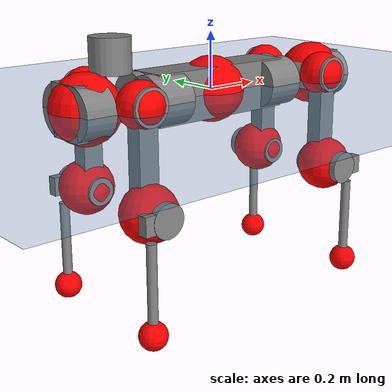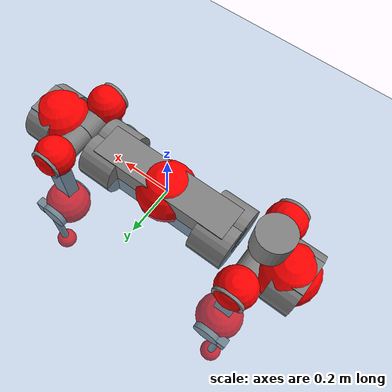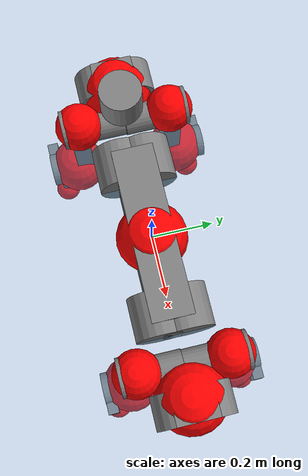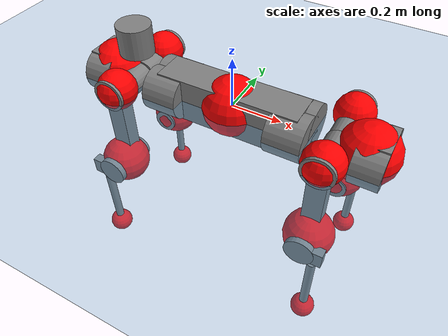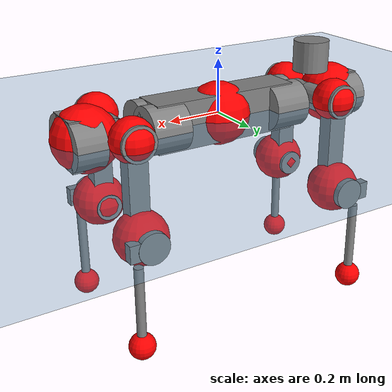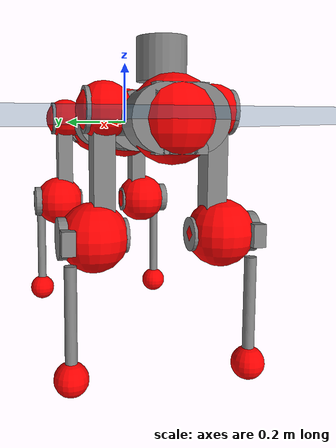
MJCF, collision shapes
<mujoco model="anymal_c">
  <compiler angle="radian" assetdir="assets" balanceinertia="true" inertiafromgeom="false"/>

  <option timestep="0.005" density="1.2" viscosity="2e-05"/>

  <size nkey="1"/>

  <visual>
    <quality shadowsize="8192"/>
    <map shadowclip="0.5"/>
  </visual>

  <default>
    <default class="/">
      <material specular="0" shininess="0.25"/>
      <geom contype="0" conaffinity="0" group="1" solref="-1000 -80"/>
      <site size="0.01 0.005 0.005" group="5"/>
      <general forcelimited="true" forcerange="-80 80" biastype="affine" gainprm="80" biasprm="0 -80 -2"/>
      <default class="anymal_c">
        <joint armature="0.01" damping="0.01" frictionloss="0.1"/>
        <default class="visual">
          <geom type="mesh" group="2"/>
          <default class="visual_zflip"/>
        </default>
        <default class="collision">
          <geom type="cylinder" group="3"/>
          <default class="foot">
            <geom size="0.03 0 0" type="sphere" condim="6" priority="1" friction="0.8 0.02 0.01" solimp="0.015 1 0.03"/>
          </default>
        </default>
      </default>
      <default class="reward_collision_sphere">
        <geom group="5" rgba="1 0 0 1"/>
      </default>
    </default>
  </default>

  <asset>
    <texture type="skybox" colorspace="auto" name="//unnamed_texture_0" builtin="gradient" rgb1="0.95 0.95 0.95" rgb2="0.95 0.95 0.95" width="100" height="600"/>
    <texture type="2d" colorspace="auto" name="texplane" builtin="checker" rgb1="0.345 0.575 0.748" rgb2="0.345 0.575 0.748" markrgb="1 1 1" width="512" height="512"/>
    <texture type="2d" colorspace="linear" name="base" file="base.png"/>
    <texture type="2d" colorspace="linear" name="top_shell" file="top_shell.png"/>
    <texture type="2d" colorspace="linear" name="bottom_shell" file="bottom_shell.png"/>
    <texture type="2d" colorspace="linear" name="remote" file="remote.png"/>
    <texture type="2d" colorspace="linear" name="hatch" file="hatch.png"/>
    <texture type="2d" colorspace="linear" name="handle" file="handle.png"/>
    <texture type="2d" colorspace="linear" name="face" file="face.png"/>
    <texture type="2d" colorspace="linear" name="battery" file="battery.png"/>
    <texture type="2d" colorspace="linear" name="lidar_cage" file="lidar_cage.png"/>
    <texture type="2d" colorspace="linear" name="depth_camera" file="depth_camera.png"/>
    <texture type="2d" colorspace="linear" name="wide_angle_camera" file="wide_angle_camera.png"/>
    <texture type="2d" colorspace="linear" name="lidar" file="lidar.png"/>
    <texture type="2d" colorspace="linear" name="drive" file="drive.png"/>
    <texture type="2d" colorspace="linear" name="hip_l" file="hip_l.png"/>
    <texture type="2d" colorspace="linear" name="shank_l" file="shank_l.png"/>
    <texture type="2d" colorspace="linear" name="foot" file="foot.png"/>
    <texture type="2d" colorspace="linear" name="thigh" file="thigh.png"/>
    <texture type="2d" colorspace="linear" name="shank_r" file="shank_r.png"/>
    <texture type="2d" colorspace="linear" name="hip_r" file="hip_r.png"/>
    <material name="MatPlane" class="/" texture="texplane" texuniform="true" texrepeat="2 2" specular="0.9" shininess="0.5"/>
    <material name="black_plastic" class="/" rgba="0.007 0.007 0.007 1"/>
    <material name="green" class="/" rgba="0.052 0.178 0.033 1"/>
    <material name="red" class="/" rgba="0.178 0.006 0.005 1"/>
    <material name="yellow" class="/" rgba="0.178 0.119 0.006 1"/>
    <material name="lwl" class="/" rgba="0.8 0.8 0.8 1"/>
    <material name="base" class="/" texture="base"/>
    <material name="top_shell" class="/" texture="top_shell"/>
    <material name="bottom_shell" class="/" texture="bottom_shell"/>
    <material name="hip_l" class="/" texture="hip_l"/>
    <material name="thigh" class="/" texture="thigh"/>
    <material name="shank_l" class="/" texture="shank_l"/>
    <material name="foot" class="/" texture="foot"/>
    <material name="hip_r" class="/" texture="hip_r"/>
    <material name="shank" class="/" texture="shank_r"/>
    <material name="hatch" class="/" texture="hatch"/>
    <material name="remote" class="/" texture="remote"/>
    <material name="handle" class="/" texture="handle"/>
    <material name="face" class="/" texture="face"/>
    <material name="depth_camera" class="/" texture="depth_camera"/>
    <material name="wide_angle_camera" class="/" texture="wide_angle_camera"/>
    <material name="battery" class="/" texture="battery"/>
    <material name="lidar_cage" class="/" texture="lidar_cage"/>
    <material name="lidar" class="/" texture="lidar"/>
    <material name="drive" class="/" texture="drive"/>
    <mesh name="base_0" class="/" file="base_0.obj"/>
    <mesh name="base_1" class="/" file="base_1.obj"/>
    <mesh name="base_2" class="/" file="base_2.obj"/>
    <mesh name="base_3" class="/" file="base_3.obj"/>
    <mesh name="base_4" class="/" file="base_4.obj"/>
    <mesh name="base_5" class="/" file="base_5.obj"/>
    <mesh name="top_shell" class="/" file="top_shell.obj"/>
    <mesh name="bottom_shell" class="/" file="bottom_shell.obj"/>
    <mesh name="remote" class="/" file="remote.obj"/>
    <mesh name="handle" class="/" file="handle.obj"/>
    <mesh name="face" class="/" file="face.obj"/>
    <mesh name="wide_angle_camera" class="/" file="wide_angle_camera.obj"/>
    <mesh name="depth_camera" class="/" file="depth_camera.obj"/>
    <mesh name="battery" class="/" file="battery.obj"/>
    <mesh name="lidar_cage" class="/" file="lidar_cage.obj"/>
    <mesh name="lidar" class="/" file="lidar.obj"/>
    <mesh name="drive" class="/" file="drive.obj"/>
    <mesh name="hip_l" class="/" file="hip_l.obj"/>
    <mesh name="thigh" class="/" file="thigh.obj"/>
    <mesh name="shank_l" class="/" file="shank_l.obj"/>
    <mesh name="foot" class="/" file="foot.obj"/>
    <mesh name="hip_r" class="/" file="hip_r.obj"/>
    <mesh name="hatch" class="/" file="hatch.obj"/>
    <mesh name="shank_r" class="/" file="shank_r.obj"/>
  </asset>

  <worldbody>
    <geom name="floor" class="/" size="100 100 0.125" type="plane" group="0" material="MatPlane"/>
    <light name="toplight_shadow" class="/" pos="0 0 5" dir="0.0990148 0.0990148 -0.990148" type="directional" ambient="0.04 0.04 0.04" diffuse="0.55 0.55 0.55" specular="0.12 0.12 0.12"/>
    <light name="toplight_fill" class="/" pos="0 0 5" dir="0.0990148 0.0990148 -0.990148" type="directional" castshadow="false" ambient="0.04 0.04 0.04" diffuse="0.3 0.3 0.3" specular="0.08 0.08 0.08"/>
    <body name="trunk" childclass="anymal_c" pos="0.00121595 0.000245873 -6.29535e-05" quat="1 0.00030599 -0.000431739 0.000585806">
      <inertial pos="0.00364281 0.00211854 0.0615021" quat="0.495845 0.502061 0.493745 0.508221" mass="18.1539" diaginertia="1.32029 0.0354896 0.512997"/>
      <joint name="//unnamed_joint_0" type="free" armature="0" damping="0" frictionloss="0"/>
      <geom name="//unnamed_geom_1" class="visual" material="green" mesh="base_0"/>
      <geom name="//unnamed_geom_2" class="visual" material="yellow" mesh="base_1"/>
      <geom name="//unnamed_geom_3" class="visual" material="red" mesh="base_2"/>
      <geom name="//unnamed_geom_4" class="visual" material="black_plastic" mesh="base_3"/>
      <geom name="//unnamed_geom_5" class="visual" material="lwl" mesh="base_4"/>
      <geom name="//unnamed_geom_6" class="visual" material="base" mesh="base_5"/>
      <geom name="trunk_1" class="collision" size="0.283226 0.0683648 0.0878976" type="box"/>
      <geom name="trunk_2" class="collision" size="0.0878976 0.0708064" pos="0.251889 0.0397713 0" quat="0.707107 0 0.707107 0"/>
      <geom name="trunk_3" class="collision" size="0.0878976 0.0708064" pos="-0.251889 0.0397713 0" quat="0.707107 0 0.707107 0"/>
      <geom name="trunk_4" class="collision" size="0.0878976 0.0708064" pos="0.251889 -0.0397713 0" quat="0.707107 0 0.707107 0"/>
      <geom name="trunk_5" class="collision" size="0.0878976 0.0708064" pos="-0.251889 -0.0397713 0" quat="0.707107 0 0.707107 0"/>
      <geom name="//unnamed_geom_12" class="visual" material="top_shell" mesh="top_shell"/>
      <geom name="//unnamed_geom_13" class="visual" material="bottom_shell" mesh="bottom_shell"/>
      <geom name="//unnamed_geom_14" class="visual" material="remote" mesh="remote"/>
      <geom name="//unnamed_geom_15" class="visual" material="handle" mesh="handle"/>
      <geom name="//unnamed_geom_16" class="visual" pos="0.480036 0 0" quat="1 0 0 0" material="face" mesh="face"/>
      <geom name="trunk_6" class="collision" size="0.0537152 0.0683648 0.0878976" pos="0.543732 0 0" type="box"/>
      <geom name="//unnamed_geom_18" class="collision" size="0.0878976 0.0537152" pos="0.543732 0.0397713 0" quat="0.707107 0 0.707107 0"/>
      <geom name="//unnamed_geom_19" class="collision" size="0.0878976 0.0537152" pos="0.543732 -0.0397713 0" quat="0.707107 0 0.707107 0"/>
      <geom name="//unnamed_geom_20" class="visual" pos="0.534643 0 -0.0354927" quat="0.965926 0 0.258819 0" material="depth_camera" mesh="depth_camera"/>
      <geom name="//unnamed_geom_21" class="visual" pos="0.59411 0 0.0180186" material="wide_angle_camera" mesh="wide_angle_camera"/>
      <geom name="//unnamed_geom_22" class="visual_zflip" pos="-0.480036 0 0" quat="0 0 0 1" material="face" mesh="face"/>
      <geom name="trunk_7" class="collision" size="0.0537152 0.0683648 0.0878976" pos="-0.543732 0 0" quat="0 0 0 1" type="box"/>
      <geom name="//unnamed_geom_24" class="collision" size="0.0878976 0.0537152" pos="-0.543732 -0.0397713 0" quat="0 -0.707107 0 0.707107"/>
      <geom name="//unnamed_geom_25" class="collision" size="0.0878976 0.0537152" pos="-0.543732 0.0397713 0" quat="0 -0.707107 0 0.707107"/>
      <geom name="//unnamed_geom_26" class="visual" pos="-0.534643 0 -0.0354927" quat="0 -0.258819 0 0.965926" material="depth_camera" mesh="depth_camera"/>
      <geom name="//unnamed_geom_27" class="visual_zflip" pos="-0.59411 0 0.0180186" quat="0 0 0 1" material="wide_angle_camera" mesh="wide_angle_camera"/>
      <geom name="//unnamed_geom_28" class="visual" material="battery" mesh="battery"/>
      <geom name="//unnamed_geom_29" class="visual" pos="0 0.0357021 0.0346199" quat="0.683013 -0.183013 0.183013 0.683013" material="depth_camera" mesh="depth_camera"/>
      <geom name="//unnamed_geom_30" class="visual" pos="0 -0.0357021 0.0346199" quat="0.683013 0.183013 0.183013 -0.683013" material="depth_camera" mesh="depth_camera"/>
      <geom name="//unnamed_geom_31" class="visual" pos="-0.421552 0 0.0884682" quat="1 0 0 0" material="lidar_cage" mesh="lidar_cage"/>
      <geom name="trunk_8" class="collision" size="0.0683648 0.0585984" pos="-0.421552 0 0.160687"/>
      <geom name="//unnamed_geom_33" class="visual" pos="-0.421552 -0.000231775 0.171159" quat="0.707107 0 0 -0.707107" material="lidar" mesh="lidar"/>
      <geom name="//unnamed_geom_34" class="visual" pos="0.347317 0.0593145 -1.09622e-08" quat="0.258819 0.965926 0 0" material="drive" mesh="drive"/>
      <geom name="//unnamed_geom_35" class="visual" pos="0.347317 -0.0593145 1.09622e-08" quat="0.258819 -0.965926 0 0" material="drive" mesh="drive"/>
      <geom name="//unnamed_geom_36" class="visual" pos="-0.347317 0.0593145 1.09622e-08" quat="0 0 0.965926 -0.258819" material="drive" mesh="drive"/>
      <geom name="//unnamed_geom_37" class="visual" pos="-0.347317 -0.0593145 -1.09622e-08" quat="0 0 -0.965926 -0.258819" material="drive" mesh="drive"/>
      <geom name="//unnamed_geom_38" class="visual" pos="0.134341 0 0.0878664" quat="1 0 0 0" material="hatch" mesh="hatch"/>
      <geom name="//unnamed_geom_39" class="reward_collision_sphere" size="0.117197"/>
      <geom name="//unnamed_geom_40" class="reward_collision_sphere" size="0.117197" pos="0.521149 0 0"/>
      <geom name="//unnamed_geom_41" class="reward_collision_sphere" size="0.117197" pos="-0.521149 0 0"/>
      <site name="imu" pos="0.308145 -0.00496131 0.0452787" size="0.0097664"/>
      <camera name="track" pos="0 -1.13632 0" quat="0.707107 0.707107 0 0" mode="trackcom"/>
      <camera name="ego_camera" pos="0.521149 0 -0.048146" quat="-0.5 -0.5 0.5 0.5"/>
      <body name="LF_HIP" pos="0.350022 0.0572772 -1.39304e-05" quat="0.25824 0.966081 -0.000496486 -0.000274617">
        <inertial pos="0.0633458 -0.0101727 -0.0106998" quat="-0.127486 0.710644 -0.130635 0.679461" mass="2.66797" diaginertia="0.0126193 0.000293444 0.00855746"/>
        <joint name="LF_HAA" pos="0 0 0" axis="0.999999 0.00151903 2.93277e-05" range="-0.736245 0.51352" armature="0.00815852" damping="0.0252646" frictionloss="0.0861391"/>
        <geom name="//unnamed_geom_42" class="visual" pos="0 -0.000644859 0.000105918" quat="0.258819 -0.965926 0 0" material="hip_l" mesh="hip_l"/>
        <geom name="//unnamed_geom_43" class="visual" pos="0.0693708 -0.0765156 -0.0488767" quat="0.183013 -0.683013 0.683013 0.183013" material="drive" mesh="drive"/>
        <geom name="//unnamed_geom_44" class="collision" size="0.048832 0.0683648" pos="0.0693707 -0.00679509 -0.0083112" quat="-0.353553 -0.612372 0.612372 -0.353553"/>
        <body name="LF_THIGH" pos="0.0692836 -0.0434861 -0.0513087" quat="0.182691 -0.682858 0.683141 0.183434">
          <inertial pos="0.0380115 0.000414701 -0.298255" quat="0.991954 -0.0137716 -0.0887191 0.0892543" mass="2.91184" diaginertia="0.0655542 0.00178469 0.0103493"/>
          <joint name="LF_HFE" pos="0 0 0" axis="0.999818 0.00738659 0.0175859" stiffness="0.0132647" range="-3.19886 3.18751" armature="0.0107363" damping="0" frictionloss="0.107859"/>
          <geom name="//unnamed_geom_45" class="visual" pos="0.0117376 1.84958e-05 0" quat="0.707107 0 0 -0.707107" material="thigh" mesh="thigh"/>
          <geom name="//unnamed_geom_46" class="collision" size="0.0634816 0.0390656" pos="0.0463244 0 0" quat="0.5 0.5 -0.5 -0.5"/>
          <geom name="//unnamed_geom_47" class="collision" size="0.036624 0.0292992 0.138013" pos="0.0347433 0 -0.170092" quat="0.707107 0 0 -0.707107" type="box"/>
          <geom name="//unnamed_geom_48" class="visual" pos="0.116158 0 -0.34304" quat="1 0 0 0" material="drive" mesh="drive"/>
          <geom name="//unnamed_geom_49" class="collision" size="0.048832 0.0683648" pos="0.0350907 0 -0.34304" quat="0.707107 0 0.707107 0"/>
          <geom name="//unnamed_geom_50" class="reward_collision_sphere" size="0.0781312" pos="0.0289527 0 0"/>
          <body name="LF_SHANK" pos="0.11505 0.00131976 -0.339153" quat="1 -0.000129106 0.000415754 0.00034348">
            <inertial pos="0.00391141 -0.0348536 -0.0995748" quat="0.991815 -0.123424 -0.00974145 -0.0312156" mass="0.538081" diaginertia="0.0208261 0.000549666 0.0026937"/>
            <joint name="LF_KFE" pos="0 0 0" axis="0.999931 -0.00784734 0.00875114" range="-3.14752 3.18319" armature="0.0105609" damping="0.0144242" frictionloss="0.100808"/>
            <geom name="//unnamed_geom_51" class="visual" pos="0.00382739 0.0204078 0" quat="0.707107 0 0 -0.707107" material="shank_l" mesh="shank_l"/>
            <geom name="LF_kfe_act" class="collision" size="0.0585984 0.0195328" pos="0.0231622 0 0" quat="0.5 0.5 -0.5 -0.5"/>
            <geom name="//unnamed_geom_53" class="collision" size="0.0561558 0.0329616 0.0185562" pos="0.0231622 -0.0326687 0" quat="0.5 0.5 -0.5 -0.5" type="box"/>
            <geom name="//unnamed_geom_54" class="visual" pos="0.0151124 -0.0433931 -0.406797" quat="0.382683 0 0 -0.92388" material="foot" mesh="foot"/>
            <geom name="LF_calf" class="collision" size="0.0170912 0.137952" pos="0.0151133 -0.0499698 -0.203399" quat="0.707107 0 0 -0.707107"/>
            <geom name="LF_foot" class="foot" size="0.0249529" pos="0.0151133 -0.0499698 -0.379715" quat="0.707107 0 0 -0.707107"/>
            <geom name="//unnamed_geom_57" class="reward_collision_sphere" size="0.097664" pos="-0.0579055 0 0"/>
            <geom name="//unnamed_geom_58" class="reward_collision_sphere" size="0.048832" pos="0.0151133 -0.0499698 -0.379715"/>
            <site name="LF_foot" class="foot" pos="0.0151133 -0.0499698 -0.379715" quat="0.707107 0 0 -0.707107" size="0.0097664"/>
          </body>
        </body>
      </body>
      <body name="RF_HIP" pos="0.347072 -0.0586945 0.000957411" quat="0.258799 -0.965931 -0.000159437 -4.31434e-05">
        <inertial pos="0.0637865 0.00780149 -0.00909973" quat="0.135802 0.677206 0.130819 0.711221" mass="2.52887" diaginertia="0.012008 0.000298175 0.00841759"/>
        <joint name="RF_HAA" pos="0 0 0" axis="0.999914 0.00689103 0.011125" range="-0.441088 0.762439" armature="0.0107319" damping="0.0151821" frictionloss="0.108399"/>
        <geom name="//unnamed_geom_59" class="visual" pos="0 0.000644854 0.000105917" quat="0.258819 0.965926 0 0" material="hip_r" mesh="hip_r"/>
        <geom name="//unnamed_geom_60" class="visual" pos="0.0693707 0.0765156 -0.0488767" quat="0.183013 0.683013 0.683013 -0.183013" material="drive" mesh="drive"/>
        <geom name="//unnamed_geom_61" class="collision" size="0.048832 0.0683648" pos="0.0693707 0.00679509 -0.0083112" quat="-0.353553 0.612372 0.612372 0.353553"/>
        <body name="RF_THIGH" pos="0.0676011 0.0383056 -0.0523543" quat="0.183448 0.68377 0.682179 -0.182858">
          <inertial pos="0.0361955 0.00214915 -0.297058" quat="0.992693 0.00292802 -0.084101 0.0864855" mass="2.99389" diaginertia="0.0645726 0.00179811 0.0109045"/>
          <joint name="RF_HFE" pos="0 0 0" axis="0.999987 -0.0045548 0.0021882" stiffness="0.00545385" range="-3.21843 3.14787" armature="0.0093993" damping="0.00788597" frictionloss="0.0736292"/>
          <geom name="//unnamed_geom_62" class="visual" pos="0.0117376 1.84958e-05 0" quat="0.707107 0 0 -0.707107" material="thigh" mesh="thigh"/>
          <geom name="//unnamed_geom_63" class="collision" size="0.0634816 0.0390656" pos="0.0463244 0 0" quat="0.5 0.5 0.5 0.5"/>
          <geom name="//unnamed_geom_64" class="collision" size="0.036624 0.0292992 0.138013" pos="0.0347433 0 -0.170092" quat="0.707107 0 0 0.707107" type="box"/>
          <geom name="//unnamed_geom_65" class="visual" pos="0.116158 0 -0.34304" quat="1 0 0 0" material="drive" mesh="drive"/>
          <geom name="//unnamed_geom_66" class="collision" size="0.048832 0.0683648" pos="0.0350907 0 -0.34304" quat="0.707107 0 0.707107 0"/>
          <geom name="//unnamed_geom_67" class="reward_collision_sphere" size="0.0781312" pos="0.0289527 0 0"/>
          <body name="RF_SHANK" pos="0.113885 0.00296568 -0.340374" quat="1 -5.37849e-05 -0.00033695 -0.000207988">
            <inertial pos="0.00757584 0.034403 -0.0998352" quat="0.99251 0.120119 -0.000413812 0.0222416" mass="0.533126" diaginertia="0.0221334 0.000553439 0.00284154"/>
            <joint name="RF_KFE" pos="0 0 0" axis="0.999978 0.00470539 -0.00459792" range="-3.15809 3.15034" armature="0.00853113" damping="0.0164461" frictionloss="0.114488"/>
            <geom name="//unnamed_geom_68" class="visual" pos="0.00382737 -0.0204078 0" quat="0.707107 0 0 0.707107" material="shank" mesh="shank_r"/>
            <geom name="RF_kfe_act" class="collision" size="0.0585984 0.0195328" pos="0.0231622 0 0" quat="0.5 0.5 0.5 0.5"/>
            <geom name="//unnamed_geom_70" class="collision" size="0.0561558 0.0329616 0.0185562" pos="0.0231622 0.0326687 0" quat="0.5 0.5 0.5 0.5" type="box"/>
            <geom name="//unnamed_geom_71" class="visual" pos="0.0151143 0.0433931 -0.406797" quat="0.382683 0 0 0.92388" material="foot" mesh="foot"/>
            <geom name="RF_calf" class="collision" size="0.0170912 0.137952" pos="0.0151133 0.0499698 -0.203399" quat="0.707107 0 0 0.707107"/>
            <geom name="RF_foot" class="foot" size="0.034486" pos="0.0151133 0.0499698 -0.379715" quat="0.707107 0 0 0.707107"/>
            <geom name="//unnamed_geom_74" class="reward_collision_sphere" size="0.097664" pos="-0.0579055 0 0"/>
            <geom name="//unnamed_geom_75" class="reward_collision_sphere" size="0.048832" pos="0.0151133 0.0499698 -0.379715"/>
            <site name="RF_foot" class="foot" pos="0.0151133 0.0499698 -0.379715" quat="0.707107 0 0 0.707107" size="0.0097664"/>
          </body>
        </body>
      </body>
      <body name="LH_HIP" pos="-0.343512 0.0614833 0.00193067" quat="0.00083847 -0.00069699 0.966173 -0.257892">
        <inertial pos="0.067675 0.00608779 -0.00956007" quat="0.131671 0.680362 0.126344 0.709794" mass="2.62739" diaginertia="0.0120753 0.000284012 0.00870369"/>
        <joint name="LH_HAA" pos="0 0 0" axis="0.999909 -0.00334249 -0.0130357" range="-0.447192 0.819389" armature="0.0110084" damping="0" frictionloss="0.0969919"/>
        <geom name="//unnamed_geom_76" class="visual" pos="0 0.000644854 0.000105917" quat="-0.258819 -0.965926 0 0" material="hip_r" mesh="hip_r"/>
        <geom name="//unnamed_geom_77" class="visual" pos="0.0693707 0.0765156 -0.0488767" quat="0.183013 0.683013 0.683013 -0.183013" material="drive" mesh="drive"/>
        <geom name="//unnamed_geom_78" class="collision" size="0.048832 0.0683648" pos="0.0693707 0.00679509 -0.0083112" quat="-0.353553 0.612372 0.612372 0.353553"/>
        <body name="LH_THIGH" pos="0.0686247 0.0459049 -0.0539862" quat="0.182848 0.683218 0.682808 -0.183174">
          <inertial pos="0.0359192 -0.00117852 -0.297615" quat="0.992505 -0.00553804 -0.0856323 0.0870081" mass="2.84033" diaginertia="0.0626047 0.00174695 0.010886"/>
          <joint name="LH_HFE" pos="0 0 0" axis="0.999978 0.00497156 0.00439396" range="-3.15278 3.10778" armature="0.00898397" damping="0" frictionloss="0.109515"/>
          <geom name="//unnamed_geom_79" class="visual" pos="0.0117376 1.84958e-05 0" quat="0.707107 0 0 -0.707107" material="thigh" mesh="thigh"/>
          <geom name="//unnamed_geom_80" class="collision" size="0.0634816 0.0390656" pos="0.0463244 0 0" quat="0.5 0.5 -0.5 -0.5"/>
          <geom name="//unnamed_geom_81" class="collision" size="0.036624 0.0292992 0.138013" pos="0.0347433 0 -0.170092" quat="0.707107 0 0 -0.707107" type="box"/>
          <geom name="//unnamed_geom_82" class="visual" pos="0.116158 0 -0.34304" quat="1 0 0 0" material="drive" mesh="drive"/>
          <geom name="//unnamed_geom_83" class="collision" size="0.048832 0.0683648" pos="0.0350907 0 -0.34304" quat="0.707107 0 0.707107 0"/>
          <geom name="//unnamed_geom_84" class="reward_collision_sphere" size="0.0781312" pos="0.0289527 0 0"/>
          <body name="LH_SHANK" pos="0.115843 -0.000940728 -0.34529" quat="0.999999 0.0010659 0.00041786 -0.000261312">
            <inertial pos="0.00634188 0.0342649 -0.0966695" quat="0.994052 0.106614 0.0175419 0.0136384" mass="0.542122" diaginertia="0.0211403 0.000552861 0.00294067"/>
            <joint name="LH_KFE" pos="0 0 0" axis="0.999999 -0.000849137 -0.00140544" range="-3.11673 3.1428" armature="0.0100791" damping="0.011851" frictionloss="0.0998465"/>
            <geom name="//unnamed_geom_85" class="visual" pos="0.00382737 -0.0204078 0" quat="-0.707107 0 0 -0.707107" material="shank" mesh="shank_r"/>
            <geom name="LH_kfe_act" class="collision" size="0.0585984 0.0195328" pos="0.0231622 0 0" quat="0.5 0.5 -0.5 -0.5"/>
            <geom name="//unnamed_geom_87" class="collision" size="0.0561558 0.0329616 0.0185562" pos="0.0231622 0.0326687 0" quat="0.5 0.5 -0.5 -0.5" type="box"/>
            <geom name="//unnamed_geom_88" class="visual" pos="0.0151143 0.0433931 -0.406797" quat="-0.382683 0 0 -0.92388" material="foot" mesh="foot"/>
            <geom name="LH_calf" class="collision" size="0.0170912 0.137952" pos="0.0151133 0.0499698 -0.203399" quat="0.707107 0 0 -0.707107"/>
            <geom name="LH_foot" class="foot" size="0.0225077" pos="0.0151133 0.0499698 -0.379715" quat="0.707107 0 0 -0.707107"/>
            <geom name="//unnamed_geom_91" class="reward_collision_sphere" size="0.097664" pos="-0.0579055 0 0"/>
            <geom name="//unnamed_geom_92" class="reward_collision_sphere" size="0.048832" pos="0.0151133 0.0499698 -0.379715"/>
            <site name="LH_foot" class="foot" pos="0.0151133 0.0499698 -0.379715" quat="0.707107 0 0 -0.707107" size="0.0097664"/>
          </body>
        </body>
      </body>
      <body name="RH_HIP" pos="-0.347495 -0.0566499 -0.00208149" quat="-0.000330343 4.4341e-05 -0.965963 -0.258681">
        <inertial pos="0.0683765 -0.00817948 -0.0118381" quat="-0.131189 0.71133 -0.122845 0.679492" mass="2.54635" diaginertia="0.0118224 0.000283963 0.00849951"/>
        <joint name="RH_HAA" pos="0 0 0" axis="0.999997 0.00245034 0.000835115" range="-0.691391 0.415562" armature="0.0103259" damping="0.00849301" frictionloss="0.0941536"/>
        <geom name="//unnamed_geom_93" class="visual" pos="0 -0.000644859 0.000105918" quat="-0.258819 0.965926 0 0" material="hip_l" mesh="hip_l"/>
        <geom name="//unnamed_geom_94" class="visual" pos="0.0693708 -0.0765156 -0.0488767" quat="-0.183013 0.683013 -0.683013 -0.183013" material="drive" mesh="drive"/>
        <geom name="//unnamed_geom_95" class="collision" size="0.048832 0.0683648" pos="0.0693707 -0.00679509 -0.0083112" quat="0.353553 0.612372 -0.612372 0.353553"/>
        <body name="RH_THIGH" pos="0.070463 -0.0431859 -0.0532511" quat="-0.183051 0.682959 -0.683027 -0.18312">
          <inertial pos="0.0357479 -0.0027574 -0.293468" quat="0.993185 -0.0042679 -0.0796975 0.0849364" mass="3.15789" diaginertia="0.067969 0.00186903 0.011517"/>
          <joint name="RH_HFE" pos="0 0 0" axis="0.999978 0.00649916 -0.00130036" range="-3.12788 3.12669" armature="0.00870318" damping="0" frictionloss="0.0938004"/>
          <geom name="//unnamed_geom_96" class="visual" pos="0.0117376 1.84958e-05 0" quat="0.707107 0 0 -0.707107" material="thigh" mesh="thigh"/>
          <geom name="//unnamed_geom_97" class="collision" size="0.0634816 0.0390656" pos="0.0463244 0 0" quat="0.5 0.5 0.5 0.5"/>
          <geom name="//unnamed_geom_98" class="collision" size="0.036624 0.0292992 0.138013" pos="0.0347433 0 -0.170092" quat="0.707107 0 0 0.707107" type="box"/>
          <geom name="//unnamed_geom_99" class="visual" pos="0.116158 0 -0.34304" quat="1 0 0 0" material="drive" mesh="drive"/>
          <geom name="//unnamed_geom_100" class="collision" size="0.048832 0.0683648" pos="0.0350907 0 -0.34304" quat="0.707107 0 0.707107 0"/>
          <geom name="//unnamed_geom_101" class="reward_collision_sphere" size="0.0781312" pos="0.0289527 0 0"/>
          <body name="RH_SHANK" pos="0.11863 -0.00265422 -0.340961" quat="1 -0.000433572 -0.00044985 0.000452135">
            <inertial pos="0.00423975 -0.0346998 -0.0964743" quat="0.992551 -0.118523 0.00571628 -0.0276053" mass="0.56648" diaginertia="0.0211134 0.000544601 0.00286578"/>
            <joint name="RH_KFE" pos="0 0 0" axis="0.999874 0.0130589 0.0090404" range="-3.16209 3.08581" armature="0.0114373" damping="0.0196772" frictionloss="0.0977198"/>
            <geom name="//unnamed_geom_102" class="visual" pos="0.00382739 0.0204078 0" quat="0.707107 0 0 -0.707107" material="shank_l" mesh="shank_l"/>
            <geom name="RH_kfe_act" class="collision" size="0.0585984 0.0195328" pos="0.0231622 0 0" quat="0.5 0.5 0.5 0.5"/>
            <geom name="//unnamed_geom_104" class="collision" size="0.0561558 0.0329616 0.0185562" pos="0.0231622 -0.0326687 0" quat="0.5 0.5 0.5 0.5" type="box"/>
            <geom name="//unnamed_geom_105" class="visual" pos="0.0151124 -0.0433931 -0.406797" quat="0.382683 0 0 -0.92388" material="foot" mesh="foot"/>
            <geom name="RH_calf" class="collision" size="0.0170912 0.137952" pos="0.0151133 -0.0499698 -0.203399" quat="0.707107 0 0 0.707107"/>
            <geom name="RH_foot" class="foot" size="0.0286492" pos="0.0151133 -0.0499698 -0.379715" quat="0.707107 0 0 0.707107"/>
            <geom name="//unnamed_geom_108" class="reward_collision_sphere" size="0.097664" pos="-0.0579055 0 0"/>
            <geom name="//unnamed_geom_109" class="reward_collision_sphere" size="0.048832" pos="0.0151133 -0.0499698 -0.379715"/>
            <site name="RH_foot" class="foot" pos="0.0151133 -0.0499698 -0.379715" quat="0.707107 0 0 0.707107" size="0.0097664"/>
          </body>
        </body>
      </body>
    </body>
  </worldbody>

  <contact>
    <pair class="/" geom1="floor" geom2="LF_foot" name="//unnamed_contact_0"/>
    <pair class="/" geom1="floor" geom2="RF_foot" name="//unnamed_contact_1"/>
    <pair class="/" geom1="floor" geom2="LH_foot" name="//unnamed_contact_2"/>
    <pair class="/" geom1="floor" geom2="RH_foot" name="//unnamed_contact_3"/>
  </contact>

  <actuator>
    <general name="LF_HAA" class="/" joint="LF_HAA" forcerange="-73.2769 73.2769" gainprm="61.4069" biasprm="0 -61.4069 -1.87108"/>
    <general name="LF_HFE" class="/" joint="LF_HFE" forcerange="-74.6633 74.6633" gainprm="61.4069" biasprm="0 -61.4069 -1.87108"/>
    <general name="LF_KFE" class="/" joint="LF_KFE" forcerange="-73.5267 73.5267" gainprm="61.4069" biasprm="0 -61.4069 -1.87108"/>
    <general name="RF_HAA" class="/" joint="RF_HAA" forcerange="-76.3892 76.3892" gainprm="61.4069" biasprm="0 -61.4069 -1.87108"/>
    <general name="RF_HFE" class="/" joint="RF_HFE" forcerange="-85.0407 85.0407" gainprm="61.4069" biasprm="0 -61.4069 -1.87108"/>
    <general name="RF_KFE" class="/" joint="RF_KFE" forcerange="-83.7393 83.7393" gainprm="61.4069" biasprm="0 -61.4069 -1.87108"/>
    <general name="LH_HAA" class="/" joint="LH_HAA" forcerange="-79.117 79.117" gainprm="61.4069" biasprm="0 -61.4069 -1.87108"/>
    <general name="LH_HFE" class="/" joint="LH_HFE" forcerange="-84.2788 84.2788" gainprm="61.4069" biasprm="0 -61.4069 -1.87108"/>
    <general name="LH_KFE" class="/" joint="LH_KFE" forcerange="-74.8445 74.8445" gainprm="61.4069" biasprm="0 -61.4069 -1.87108"/>
    <general name="RH_HAA" class="/" joint="RH_HAA" forcerange="-71.3993 71.3993" gainprm="61.4069" biasprm="0 -61.4069 -1.87108"/>
    <general name="RH_HFE" class="/" joint="RH_HFE" forcerange="-88.2389 88.2389" gainprm="61.4069" biasprm="0 -61.4069 -1.87108"/>
    <general name="RH_KFE" class="/" joint="RH_KFE" forcerange="-74.3056 74.3056" gainprm="61.4069" biasprm="0 -61.4069 -1.87108"/>
  </actuator>

  <sensor>
    <gyro site="imu" name="imu_angular_velocity"/>
    <velocimeter site="imu" name="imu_linear_velocity"/>
    <framelinvel objtype="site" objname="LF_foot" name="LF_foot_global_linear_velocity"/>
    <framelinvel objtype="site" objname="RF_foot" name="RF_foot_global_linear_velocity"/>
    <framelinvel objtype="site" objname="LH_foot" name="LH_foot_global_linear_velocity"/>
    <framelinvel objtype="site" objname="RH_foot" name="RH_foot_global_linear_velocity"/>
  </sensor>

  <keyframe>
    <key name="home" qpos="0 0 0.55 1 0 0 0 0 0.4 -0.8 0 -0.4 0.8 0 -0.4 0.8 0 0.4 -0.8"/>
  </keyframe>
</mujoco>
